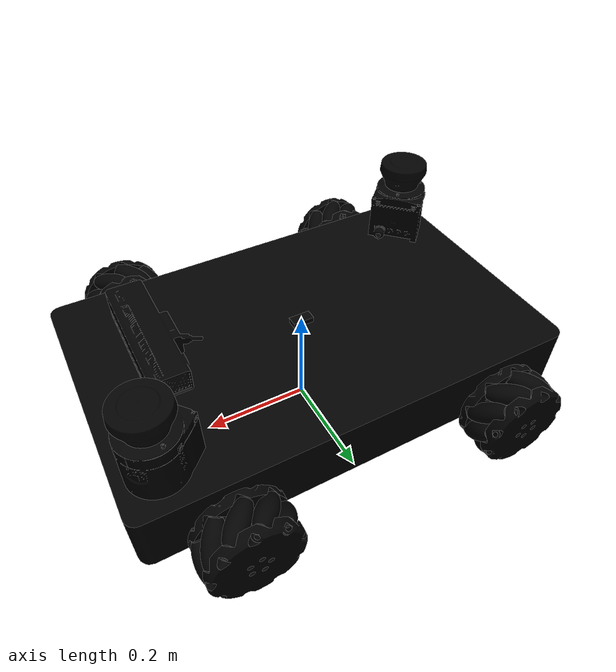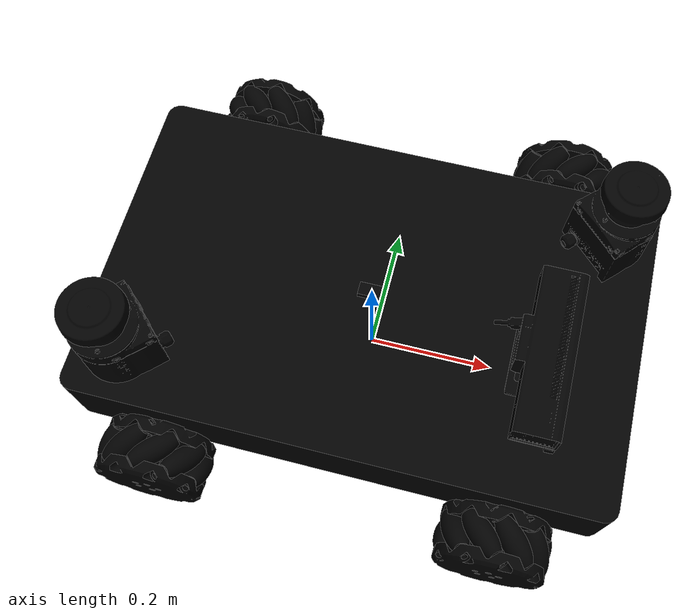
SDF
<?xml version='1.0' encoding='utf-8'?>
<sdf version="1.6">
  <world name="default">

    <gravity>0 0 0</gravity>
    <physics default="0" name="default_physics" type="ode">
      <max_step_size>0.005</max_step_size>
      <real_time_factor>1.0</real_time_factor>
      <real_time_update_rate>1000</real_time_update_rate>
    </physics>

    <plugin name='ignition::gazebo::systems::Physics' filename='libignition-gazebo-physics-system.so'/>
    <plugin name='ignition::gazebo::systems::UserCommands' filename='libignition-gazebo-user-commands-system.so'/>
    <plugin name='ignition::gazebo::systems::SceneBroadcaster' filename='libignition-gazebo-scene-broadcaster-system.so'/>
    <plugin name='ignition::gazebo::systems::Imu' filename='ignition-gazebo-imu-system'/>
    <plugin name='ignition::gazebo::systems::Sensors' filename='ignition-gazebo-sensors-system'>
        <render_engine>ogre2</render_engine>
    </plugin>

  <include>
      <uri>model://zm_robot</uri>
      <name>zm_robot</name>
      <pose>0 0 0.03 0 0 0</pose>
    </include>

    <gui fullscreen='0'>
      <camera name='user_camera'>
        <pose frame=''>-4.70385 10.895 16.2659 -0 0.921795 -1.12701</pose>
        <view_controller>orbit</view_controller>
        <projection_type>perspective</projection_type>
      </camera>
    </gui>

  </world>
</sdf>
